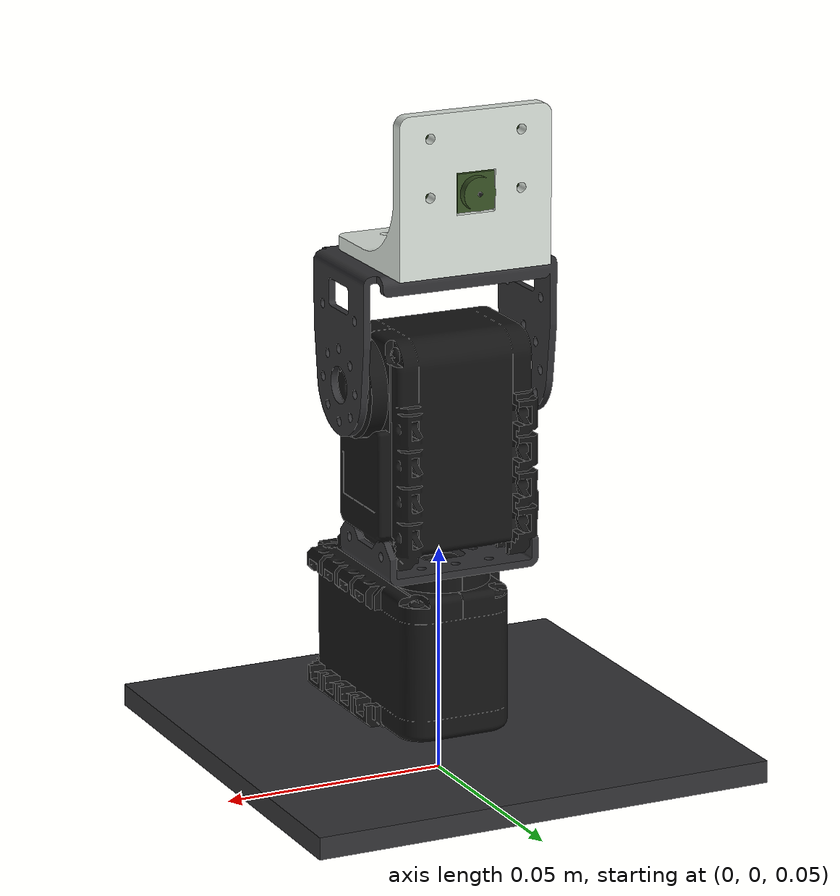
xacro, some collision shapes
<?xml version="1.0"?>
<robot name="phantomx_turret" xmlns:xacro="http://ros.org/wiki/xacro">
  <xacro:include filename="$(find phantomx_turret)/urdf/pan_tilt_hardware.xacro"/>

  <!-- angle limits in rad ~ +/- 150 deg !-->
  <xacro:property name="ax12_llimit" value="${-(5.0/6.0)*M_PI}"/>
  <xacro:property name="ax12_ulimit" value="${(5.0/6.0)*M_PI}"/>
  <!-- vlimit in rad/s ~(0.111rpm * 1023) !-->
  <xacro:property name="ax12_vlimit" value="11.891242339515"/>
  <!-- elimit in N m !-->
  <xacro:property name="ax12_elimit" value="1.5"/>

  <material name="White">
    <color rgba="0.87 0.90 0.87 1.0"/>
  </material>
  <material name="Black">
    <color rgba="0.08 0.08 0.08 1.0"/>
  </material>
  <material name="Gray">
    <color rgba="0.2 0.2 0.21 1.0"/>
  </material>
  <material name="Green">
    <color rgba="0.22 0.32 0.14 1.0"/>
  </material>

  <!-- ros_control plugin -->
  <gazebo>
    <plugin name="gazebo_ros_control" filename="libgazebo_ros_control.so">
      <robotNamespace>/phantomx_turret</robotNamespace>
      <robotSimType>gazebo_ros_control/DefaultRobotHWSim</robotSimType>
    </plugin>
  </gazebo>

  <link name="base_link"/>

  <base_mount parent="base_link" name="base_mount" color="Gray" >
      <origin xyz="0 0 0" rpy="0 0 0"/>
  </base_mount>

  <!-- AX-12A Pan !-->
  <AX12A_compound_fixed parent="base_mount_link" name="pan_servo"
                        elimit="${ax12_elimit}" vlimit="${ax12_vlimit}"
                        llimit="${ax12_llimit}" ulimit="${ax12_ulimit}">
    <origin xyz="-2e-6 -9e-6 0.0763" rpy="0 0 0"/>
  </AX12A_compound_fixed>

  <interbotix_F3_bracket_fixed parent="pan_servo_link" name="pan_F3" color="Gray">
    <origin xyz="0 0 0.02094" rpy="0 0 0"/>
  </interbotix_F3_bracket_fixed>

  <AX12A_compound_fixed parent="pan_F3_link" name="tilt_servo"
                        elimit="${ax12_elimit}" vlimit="${ax12_vlimit}"
                        llimit="${ax12_llimit}" ulimit="${ax12_ulimit}">
    <origin xyz="0 0 0.0415" rpy="${M_PI/2} 0 ${M_PI/2}"/>
  </AX12A_compound_fixed>

  <interbotix_F2_bracket_fixed parent="tilt_servo_link" name="pan_F2" color="Gray">
    <origin xyz="-0.002002 0.017175 -3.601e-7" rpy="0 0 0"/>
  </interbotix_F2_bracket_fixed>

  <camera_mount_fixed parent="pan_F2_link" name="camera_mount" color="White">
    <origin xyz="-3.788e-9 0.009325 4e-8" rpy="0 0 0"/>
  </camera_mount_fixed>

  <rpi_camera_fixed parent="camera_mount_link" name="camera" color="Green">
    <origin xyz="0.01535 0.008 -0.0125" rpy="0 0 0"/>
  </rpi_camera_fixed>

</robot>

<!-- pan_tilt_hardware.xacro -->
<robot xmlns:xacro="http://ros.org/wiki/xacro">
  <xacro:property name="M_PI" value="3.14159"/>
  <xacro:property name="M_SCALE" value="0.001"/>

  <xacro:macro name="base_mount" params="parent name color *origin">
   <joint name="${name}_joint" type="fixed">
      <xacro:insert_block name="origin"/>
        <parent link="${parent}"/>
        <child link="${name}_link"/>
    </joint>

    <link name="${name}_link">
      <inertial>
        <mass value="0.21328"/>
        <origin xyz="0.00199427 0.0257168 0.00107065"/>
        <inertia ixx="0.0003798" ixy="0" ixz="0"
                 iyy="0.0006116" iyz="0"
                 izz="0.000379"/>
      </inertial>

      <visual>
        <origin xyz="0 0 0" rpy="${M_PI/2} 0 0"/>
        <geometry>
          <mesh filename="package://phantomx_turret/meshes/Base.stl" scale="${M_SCALE} ${M_SCALE} ${M_SCALE}"/>
        </geometry>
        <material name="${color}"/>
      </visual>

      <collision>
        <origin xyz="-2e-6 -9e-6 0.05785" rpy="${M_PI/2} 0 0"/>
        <geometry>
          <box size="0.1045 0.0049 0.1045"/>
        </geometry>
      </collision>

      <collision>
        <origin xyz="-2e-6 -9.5e-6 0.0329" rpy="${M_PI/2} 0 0"/>
        <geometry>
          <box size="0.086 0.045 0.086929"/>
        </geometry>
      </collision>

      <collision>
        <origin xyz="-2e-6 -9e-6 0.005139" rpy="${M_PI/2} 0 0"/>
        <geometry>
          <box size="0.178 0.010522 0.178"/>
        </geometry>
      </collision>
    </link>

    <gazebo reference="${name}_link">
      <material>Gazebo/${color}</material>
      <selfCollide>false</selfCollide>
      <gravity>true</gravity>
    </gazebo>
  </xacro:macro>

  <xacro:macro name="AX12A_fixed" params="parent name *origin">
    <joint name="${name}_joint" type="fixed">
      <xacro:insert_block name="origin"/>
      <parent link="${parent}"/>
      <child link="${name}_link"/>
    </joint>

    <link name="${name}_link">
      <inertial>
        <mass value="0.0546"/>
        <origin xyz="-2.89001e-5 -0.0126033 0.00112682"/>
        <inertia ixx="1.43900e-5" ixy="1.54100e-9" ixz="1.1563e-8"
                 iyy="1.21900e-5" iyz="2.16221e-7"
                 izz="7.768456e-6"/>
      </inertial>

      <visual>
        <origin xyz="0 0 0" rpy="0 0 0"/>
        <geometry>
          <mesh filename="package://phantomx_turret/meshes/AX-12A.stl" scale="${M_SCALE} ${M_SCALE} ${M_SCALE}"/>
        </geometry>
        <material name="Black"/>
      </visual>

      <collision>
        <origin xyz="0 -0.0135 0.0010025" rpy="0 0 0"/>
        <geometry>
          <box size="0.032 0.05 0.040047"/>
        </geometry>
      </collision>
    </link>

    <gazebo reference="${name}_link">
      <material>Gazebo/Black</material>
      <selfCollide>false</selfCollide>
      <gravity>true</gravity>
    </gazebo>
  </xacro:macro>

  <xacro:macro name="AX12A_compound_fixed" params="parent name llimit ulimit vlimit elimit *origin">
    <joint name="${name}_body_joint" type="fixed">
      <xacro:insert_block name="origin"/>
      <parent link="${parent}"/>
      <child link="${name}_body_link"/>
    </joint>

    <link name="${name}_body_link">
      <inertial>
        <mass value="0.052587"/>
        <origin xyz="-3.01694e-5 -0.0131566 0.000442296"/>
        <inertia ixx="1.3400e-05" ixy="-1.0798e-08" ixz="2.4880e-09"
                 iyy="7.1120e-06" iyz="1.9648e-07"
                 izz="1.1780e-05"/>
      </inertial>

      <visual>
        <origin xyz="0 0 0" rpy="0 0 0"/>
        <geometry>
          <mesh filename="package://phantomx_turret/meshes/AX-12A-Fixed.stl" scale="${M_SCALE} ${M_SCALE} ${M_SCALE}"/>
        </geometry>
        <material name="Black"/>
      </visual>

      <collision>
        <origin xyz="0 0 0" rpy="0 0 0"/>
        <geometry>
          <box size="0.001 0.001 0.001"/>
        </geometry>
      </collision>
    </link>

    <gazebo reference="${name}_body_link">
      <material>Gazebo/Black</material>
      <selfCollide>false</selfCollide>
      <gravity>true</gravity>
    </gazebo>

    <joint name="${name}_horn_joint" type="revolute">
      <origin xyz="0 0 0" rpy="0 0 0"/>
      <axis xyz="0 0 1"/>
      <limit effort="${elimit}" velocity="${vlimit}" lower="${llimit}" upper="${ulimit}"/>
      <dynamics friction="0.13"/>
      <parent link="${name}_body_link"/>
      <child link="${name}_link"/>
    </joint>

    <link name="${name}_link">
      <inertial>
        <mass value="0.002013"/>
        <origin xyz="2.05733e-9 -3.64002e-6 0.0167129"/>
        <inertia ixx="1.4571e-07" ixy="5.0780e-15" ixz="-1.7060e-14"
                 iyy="1.4591e-07" iyz="1.7000e-11"
                 izz="7.6730e-08"/>
      </inertial>

      <visual>
        <origin xyz="0 0 0" rpy="0 0 0"/>
        <geometry>
          <mesh filename="package://phantomx_turret/meshes/AX-12A-Rotating.stl" scale="${M_SCALE} ${M_SCALE} ${M_SCALE}"/>
        </geometry>
        <material name="Black"/>
      </visual>

      <collision>
        <origin xyz="0 0 0" rpy="0 0 0"/>
        <geometry>
          <box size="0.001 0.001 0.001"/>
        </geometry>
      </collision>
    </link>

    <gazebo reference="${name}_link">
      <material>Gazebo/Black</material>
      <selfCollide>false</selfCollide>
      <gravity>true</gravity>
    </gazebo>

  </xacro:macro>

  <xacro:macro name="interbotix_F3_bracket_fixed" params="parent name color *origin">
    <joint name="${name}_joint" type="fixed">
      <xacro:insert_block name="origin"/>
      <parent link="${parent}"/>
      <child link="${name}_link"/>
    </joint>

    <link name="${name}_link">
      <inertial>
        <mass value="0.004398"/>
        <origin xyz="2.45363e-17 -2.45363e-17 0.00183916"/>
        <inertia ixx="7.00046e-7" ixy="0" ixz="0"
                 iyy="2.66739e-7" iyz="0"
                 izz="9.31478e-7"/>
      </inertial>

      <visual>
        <origin xyz="0 0 0" rpy="0 0 ${M_PI/2}"/>
        <geometry>
          <mesh filename="package://phantomx_turret/meshes/F3-Bracket.stl" scale="${M_SCALE} ${M_SCALE} ${M_SCALE}"/>
        </geometry>
        <material name="${color}"/>
      </visual>

      <collision>
        <origin xyz="0 0 0" rpy="0 0 0"/>
        <geometry>
          <box size="0.001 0.001 0.001"/>
        </geometry>
      </collision>
    </link>

    <gazebo reference="${name}_link">
      <material>Gazebo/${color}</material>
      <selfCollide>false</selfCollide>
      <gravity>true</gravity>
    </gazebo>

  </xacro:macro>

  <xacro:macro name="interbotix_F2_bracket_fixed" params="parent name color *origin">
    <joint name="${name}_joint" type="fixed">
      <xacro:insert_block name="origin"/>
      <parent link="${parent}"/>
      <child link="${name}_link"/>
    </joint>

    <link name="${name}_link">
      <inertial>
        <mass value="0.011446"/>
        <origin xyz="1.73681e-8 3.78795e-9 -3.90228e-9"/>
        <inertia ixx="4.9483e-06" ixy="0" ixz="8.3000e-11"
                 iyy="2.2081e-06" iyz="0"
                 izz="4.4637e-06"/>
      </inertial>

      <visual>
        <origin xyz="0 0 0" rpy="${M_PI/2} ${M_PI} 0"/>
        <geometry>
          <mesh filename="package://phantomx_turret/meshes/F2-Bracket.stl" scale="${M_SCALE} ${M_SCALE} ${M_SCALE}"/>
        </geometry>
        <material name="${color}"/>
      </visual>

      <collision>
        <origin xyz="0 0 0" rpy="0 0 0"/>
        <geometry>
          <box size="0.001 0.001 0.001"/>
        </geometry>
      </collision>
    </link>

    <gazebo reference="${name}_link">
      <material>Gazebo/${color}</material>
      <selfCollide>false</selfCollide>
      <gravity>true</gravity>
    </gazebo>

  </xacro:macro>

  <xacro:macro name="camera_mount_fixed" params="parent name color *origin">
    <joint name="${name}_joint" type="fixed">
      <xacro:insert_block name="origin"/>
      <parent link="${parent}"/>
      <child link="${name}_link"/>
    </joint>

    <link name="${name}_link">
      <inertial>
        <mass value="0.006453"/>
        <origin xyz="3.09425e-6 0.00873896 -0.00980897"/>
        <inertia ixx="1.3618e-06" ixy="1.4400e-10" ixz="8.2000e-11"
                 iyy="1.4384e-06" iyz="3.8945e-07"
                 izz="1.5063e-06"/>
      </inertial>

      <visual>
        <origin xyz="0 0 0" rpy="0 ${-M_PI/2} 0"/>
        <geometry>
          <mesh filename="package://phantomx_turret/meshes/Head.stl" scale="${M_SCALE} ${M_SCALE} ${M_SCALE}"/>
        </geometry>
        <material name="${color}"/>
      </visual>

      <collision>
        <origin xyz="0 0 0" rpy="0 0 0"/>
        <geometry>
          <box size="0.001 0.001 0.001"/>
        </geometry>
      </collision>
    </link>

    <gazebo reference="${name}_link">
      <material>Gazebo/${color}</material>
      <selfCollide>false</selfCollide>
      <gravity>true</gravity>
    </gazebo>

  </xacro:macro>

  <xacro:macro name="rpi_camera_fixed" params="parent name color *origin">
    <joint name="${name}_joint" type="fixed">
      <xacro:insert_block name="origin"/>
      <parent link="${parent}"/>
      <child link="${name}_link"/>
    </joint>

    <link name="${name}_link">
      <inertial>
        <mass value="0.003"/>
        <origin xyz="-0.00911549 -0.012447 0.000734977"/>
        <inertia ixx="3.5256e-07" ixy="1.1050e-09" ixz="3.5024e-08"
                 iyy="4.1795e-07" iyz="2.6700e-10"
                 izz="7.0244e-07"/>
      </inertial>

      <visual>
        <origin xyz="0 0 0" rpy="${-M_PI/2} 0 ${-M_PI/2}"/>
        <geometry>
          <mesh filename="package://phantomx_turret/meshes/Camera.stl" scale="${M_SCALE} ${M_SCALE} ${M_SCALE}"/>
        </geometry>
        <material name="${color}"/>
      </visual>

      <collision>
        <origin xyz="0 0 0" rpy="0 0 0"/>
        <geometry>
          <box size="0.001 0.001 0.001"/>
        </geometry>
      </collision>
    </link>

    <gazebo reference="${name}_link">
      <material>Gazebo/${color}</material>
      <selfCollide>false</selfCollide>
      <gravity>true</gravity>
    </gazebo>

    <joint name="${name}_lens_joint" type="fixed">
      <origin xyz="0.00615 0.009462 0.0125" rpy="0 0 0"/>
      <parent link="${name}_link"/>
      <child link="${name}_lens_link"/>
    </joint>

    <link name="${name}_lens_link">
      <inertial>
        <mass value="0.0001"/>
        <origin xyz="0 0 0"/>
        <inertia ixx="1e-09" ixy="0" ixz="0"
                 iyy="1e-09" iyz="0"
                 izz="1e-09"/>
      </inertial>

      <visual>
        <origin xyz="0 0 0" rpy="0 ${M_PI/2} 0"/>
        <geometry>
          <cylinder radius="0.0005" length="0.0005"/>
        </geometry>
        <material name="Black"/>
      </visual>

      <collision>
        <origin xyz="0 0 0" rpy="0 ${M_PI/2} 0"/>
        <geometry>
          <cylinder radius="0.0005" length="0.0005"/>
        </geometry>
      </collision>
    </link>

    <gazebo reference="${name}_lens_link">
      <material>Gazebo/Black</material>
      <selfCollide>false</selfCollide>
      <gravity>true</gravity>

      <sensor type="camera" name="${name}_camera">
        <update_rate>15.0</update_rate>
        <camera name="camera">
          <horizontal_fov>${62.2 * M_PI/180.0}</horizontal_fov>
          <image>
            <width>3240</width>
            <height>2464</height>
            <format>R8G8B8</format>
          </image>
          <clip>
            <near>0.02</near>
            <far>300</far>
          </clip>
          <noise>
            <type>gaussian</type>
            <!-- Noise is sampled independently per pixel on each frame.
                That pixel's noise value is added to each of its color
                channels, which at that point lie in the range [0,1]. -->
            <mean>0.0</mean>
            <stddev>0.007</stddev>
          </noise>
        </camera>
        <plugin name="camera_controller" filename="libgazebo_ros_camera.so">
          <alwaysOn>true</alwaysOn>
          <updateRate>0.0</updateRate>
          <cameraName>phantomx_turret/camera</cameraName>
          <imageTopicName>image_raw</imageTopicName>
          <cameraInfoTopicName>camera_info</cameraInfoTopicName>
          <frameName>${name}_lens_link</frameName>
          <hackBaseline>0.07</hackBaseline>
          <distortionK1>0.0</distortionK1>
          <distortionK2>0.0</distortionK2>
          <distortionK3>0.0</distortionK3>
          <distortionT1>0.0</distortionT1>
          <distortionT2>0.0</distortionT2>
        </plugin>
      </sensor>
    </gazebo>

  </xacro:macro>

</robot>
